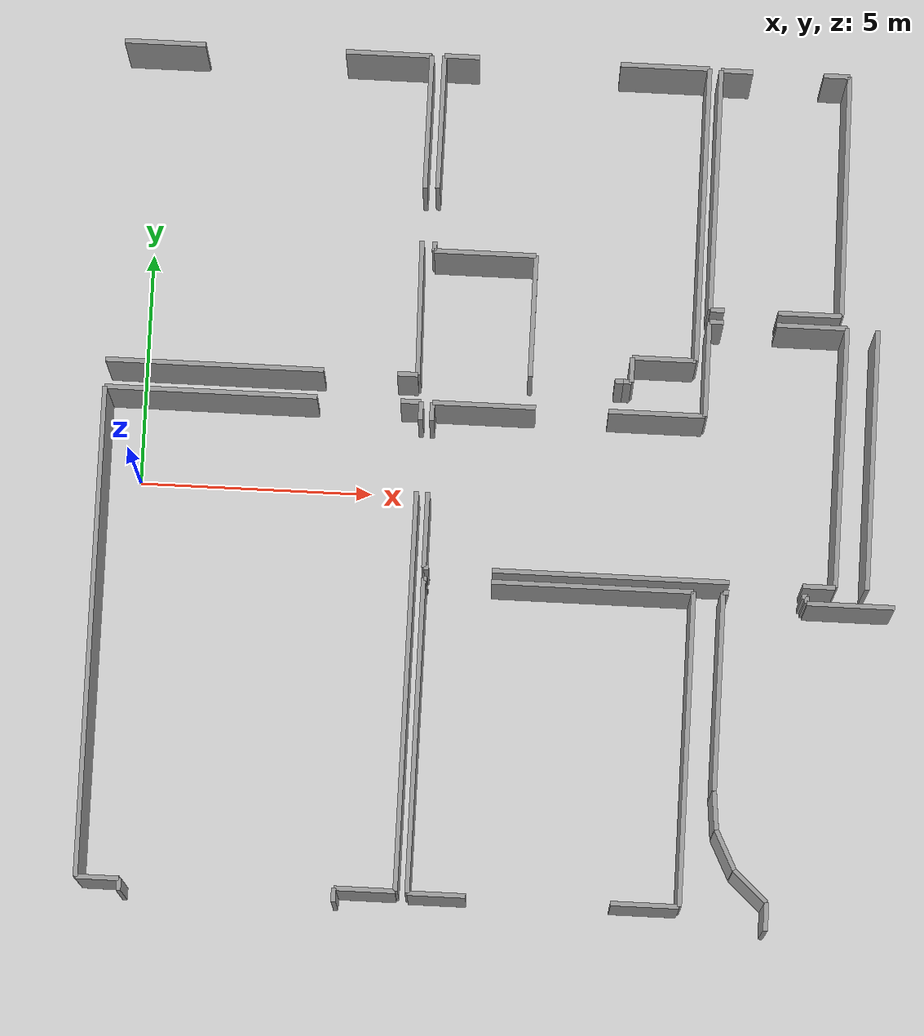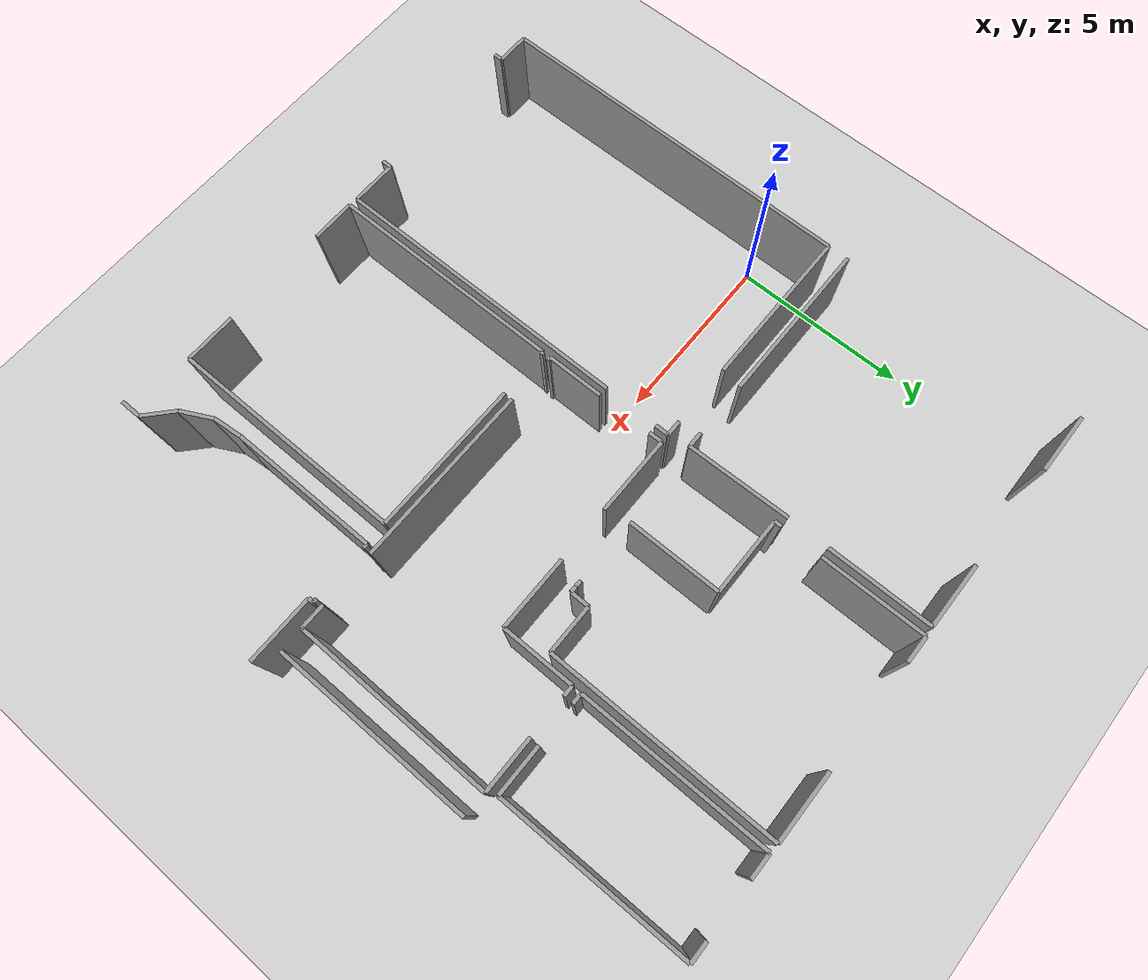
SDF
<sdf version="1.6">
 <world name="default">
  <model name="ground_plane">
   <static>1</static>
   <link name="link">
    <collision name="collision">
     <geometry><plane><normal>0 0 1</normal><size>100 100</size></plane></geometry>
     <surface><friction><ode><mu>100</mu><mu2>50</mu2></ode></friction></surface>
    </collision>
    <visual name="visual">
     <cast_shadows>0</cast_shadows>
     <geometry><plane><normal>0 0 1</normal><size>100 100</size></plane></geometry>
     <material>
      <script><uri>file://media/materials/scripts/gazebo.material</uri><name>Gazebo/Grey</name></script>
     </material>
    </visual>
   </link>
  </model>
  <model name="0510034870_A-40">
   <static>1</static>
   <link name="Wall_117">
    <collision name="Wall_117_Collision">
     <geometry><box><size>0.439725044906 0.1 2.5</size></box></geometry>
     <pose>0.219862522453 0 1.25 0 0 0</pose>
    </collision>
    <visual name="Wall_117_Visual">
     <pose>0.219862522453 0 1.25 0 0 0</pose>
     <geometry><box><size>0.439725044906 0.1 2.5</size></box></geometry>
     <material>
      <script><uri>file://media/materials/scripts/gazebo.material</uri><name>Gazebo/Grey</name></script>
      <ambient>1 1 1 1</ambient>
     </material>
    </visual>
    <pose>39.5055632073 -6.96425964596 0 0 0 3.14159265359</pose>
   </link>
   <link name="Wall_118">
    <collision name="Wall_118_Collision">
     <geometry><box><size>4.65595704303 0.1 2.5</size></box></geometry>
     <pose>2.32797852151 0 1.25 0 0 0</pose>
    </collision>
    <visual name="Wall_118_Visual">
     <pose>2.32797852151 0 1.25 0 0 0</pose>
     <geometry><box><size>4.65595704303 0.1 2.5</size></box></geometry>
     <material>
      <script><uri>file://media/materials/scripts/gazebo.material</uri><name>Gazebo/Grey</name></script>
      <ambient>1 1 1 1</ambient>
     </material>
    </visual>
    <pose>37.4970962152 -6.96425964596 0 0 0 3.14159265359</pose>
   </link>
   <link name="Wall_120">
    <collision name="Wall_120_Collision">
     <geometry><box><size>1.74252473771 0.1 2.5</size></box></geometry>
     <pose>0.871262368854 0 1.25 0 0 0</pose>
    </collision>
    <visual name="Wall_120_Visual">
     <pose>0.871262368854 0 1.25 0 0 0</pose>
     <geometry><box><size>1.74252473771 0.1 2.5</size></box></geometry>
     <material>
      <script><uri>file://media/materials/scripts/gazebo.material</uri><name>Gazebo/Grey</name></script>
      <ambient>1 1 1 1</ambient>
     </material>
    </visual>
    <pose>32.8411391722 -0.0210722740919 0 0 0 0.0</pose>
   </link>
   <link name="Wall_121">
    <collision name="Wall_121_Collision">
     <geometry><box><size>1.84940940509 0.1 2.5</size></box></geometry>
     <pose>0.924704702545 0 1.25 0 0 0</pose>
    </collision>
    <visual name="Wall_121_Visual">
     <pose>0.924704702545 0 1.25 0 0 0</pose>
     <geometry><box><size>1.84940940509 0.1 2.5</size></box></geometry>
     <material>
      <script><uri>file://media/materials/scripts/gazebo.material</uri><name>Gazebo/Grey</name></script>
      <ambient>1 1 1 1</ambient>
     </material>
    </visual>
    <pose>37.5964913394 -0.0210722740919 0 0 0 0.0</pose>
   </link>
   <link name="Wall_122">
    <collision name="Wall_122_Collision">
     <geometry><box><size>2.89654909776 0.1 2.5</size></box></geometry>
     <pose>1.44827454888 0 1.25 0 0 0</pose>
    </collision>
    <visual name="Wall_122_Visual">
     <pose>1.44827454888 0 1.25 0 0 0</pose>
     <geometry><box><size>2.89654909776 0.1 2.5</size></box></geometry>
     <material>
      <script><uri>file://media/materials/scripts/gazebo.material</uri><name>Gazebo/Grey</name></script>
      <ambient>1 1 1 1</ambient>
     </material>
    </visual>
    <pose>39.4459007445 -0.0210722740919 0 0 0 -1.57079632679</pose>
   </link>
   <link name="Wall_123">
    <collision name="Wall_123_Collision">
     <geometry><box><size>2.89386371361 0.1 2.5</size></box></geometry>
     <pose>1.44693185681 0 1.25 0 0 0</pose>
    </collision>
    <visual name="Wall_123_Visual">
     <pose>1.44693185681 0 1.25 0 0 0</pose>
     <geometry><box><size>2.89386371361 0.1 2.5</size></box></geometry>
     <material>
      <script><uri>file://media/materials/scripts/gazebo.material</uri><name>Gazebo/Grey</name></script>
      <ambient>1 1 1 1</ambient>
     </material>
    </visual>
    <pose>39.4459007445 -4.07101102486 0 0 0 -1.5501779784</pose>
   </link>
   <link name="Wall_124">
    <collision name="Wall_124_Collision">
     <geometry><box><size>0.183049513497 0.1 2.5</size></box></geometry>
     <pose>0.0915247567485 0 1.25 0 0 0</pose>
    </collision>
    <visual name="Wall_124_Visual">
     <pose>0.0915247567485 0 1.25 0 0 0</pose>
     <geometry><box><size>0.183049513497 0.1 2.5</size></box></geometry>
     <material>
      <script><uri>file://media/materials/scripts/gazebo.material</uri><name>Gazebo/Grey</name></script>
      <ambient>1 1 1 1</ambient>
     </material>
    </visual>
    <pose>43.8901195153 -6.88809479985 0 0 0 3.14159265359</pose>
   </link>
   <link name="Wall_125">
    <collision name="Wall_125_Collision">
     <geometry><box><size>2.62235565175 0.1 2.5</size></box></geometry>
     <pose>1.31117782587 0 1.25 0 0 0</pose>
    </collision>
    <visual name="Wall_125_Visual">
     <pose>1.31117782587 0 1.25 0 0 0</pose>
     <geometry><box><size>2.62235565175 0.1 2.5</size></box></geometry>
     <material>
      <script><uri>file://media/materials/scripts/gazebo.material</uri><name>Gazebo/Grey</name></script>
      <ambient>1 1 1 1</ambient>
     </material>
    </visual>
    <pose>41.8977740824 -6.88809479985 0 0 0 1.57079632679</pose>
   </link>
   <link name="Wall_126">
    <collision name="Wall_126_Collision">
     <geometry><box><size>2.17933013018 0.1 2.5</size></box></geometry>
     <pose>1.08966506509 0 1.25 0 0 0</pose>
    </collision>
    <visual name="Wall_126_Visual">
     <pose>1.08966506509 0 1.25 0 0 0</pose>
     <geometry><box><size>2.17933013018 0.1 2.5</size></box></geometry>
     <material>
      <script><uri>file://media/materials/scripts/gazebo.material</uri><name>Gazebo/Grey</name></script>
      <ambient>1 1 1 1</ambient>
     </material>
    </visual>
    <pose>41.8977740824 -4.2657391481 0 0 0 3.14159265359</pose>
   </link>
   <link name="Wall_127">
    <collision name="Wall_127_Collision">
     <geometry><box><size>0.198790248361 0.1 2.5</size></box></geometry>
     <pose>0.0993951241804 0 1.25 0 0 0</pose>
    </collision>
    <visual name="Wall_127_Visual">
     <pose>0.0993951241804 0 1.25 0 0 0</pose>
     <geometry><box><size>0.198790248361 0.1 2.5</size></box></geometry>
     <material>
      <script><uri>file://media/materials/scripts/gazebo.material</uri><name>Gazebo/Grey</name></script>
      <ambient>1 1 1 1</ambient>
     </material>
    </visual>
    <pose>39.7184439522 -4.2657391481 0 0 0 1.57079632679</pose>
   </link>
   <link name="Wall_128">
    <collision name="Wall_128_Collision">
     <geometry><box><size>2.89870710174 0.1 2.5</size></box></geometry>
     <pose>1.44935355087 0 1.25 0 0 0</pose>
    </collision>
    <visual name="Wall_128_Visual">
     <pose>1.44935355087 0 1.25 0 0 0</pose>
     <geometry><box><size>2.89870710174 0.1 2.5</size></box></geometry>
     <material>
      <script><uri>file://media/materials/scripts/gazebo.material</uri><name>Gazebo/Grey</name></script>
      <ambient>1 1 1 1</ambient>
     </material>
    </visual>
    <pose>39.7184439522 -2.90264228545 0 0 0 1.57079632679</pose>
   </link>
   <link name="Wall_129">
    <collision name="Wall_129_Collision">
     <geometry><box><size>0.758728808718 0.1 2.5</size></box></geometry>
     <pose>0.379364404359 0 1.25 0 0 0</pose>
    </collision>
    <visual name="Wall_129_Visual">
     <pose>0.379364404359 0 1.25 0 0 0</pose>
     <geometry><box><size>0.758728808718 0.1 2.5</size></box></geometry>
     <material>
      <script><uri>file://media/materials/scripts/gazebo.material</uri><name>Gazebo/Grey</name></script>
      <ambient>1 1 1 1</ambient>
     </material>
    </visual>
    <pose>39.7184439522 -0.00393518371595 0 0 0 0.0</pose>
   </link>
   <link name="Wall_130">
    <collision name="Wall_130_Collision">
     <geometry><box><size>1.91237234454 0.1 2.5</size></box></geometry>
     <pose>0.956186172272 0 1.25 0 0 0</pose>
    </collision>
    <visual name="Wall_130_Visual">
     <pose>0.956186172272 0 1.25 0 0 0</pose>
     <geometry><box><size>1.91237234454 0.1 2.5</size></box></geometry>
     <material>
      <script><uri>file://media/materials/scripts/gazebo.material</uri><name>Gazebo/Grey</name></script>
      <ambient>1 1 1 1</ambient>
     </material>
    </visual>
    <pose>43.5051062182 -0.00393518371595 0 0 0 0.0</pose>
   </link>
   <link name="Wall_131">
    <collision name="Wall_131_Collision">
     <geometry><box><size>6.36052629909 0.1 2.5</size></box></geometry>
     <pose>3.18026314954 0 1.25 0 0 0</pose>
    </collision>
    <visual name="Wall_131_Visual">
     <pose>3.18026314954 0 1.25 0 0 0</pose>
     <geometry><box><size>6.36052629909 0.1 2.5</size></box></geometry>
     <material>
      <script><uri>file://media/materials/scripts/gazebo.material</uri><name>Gazebo/Grey</name></script>
      <ambient>1 1 1 1</ambient>
     </material>
    </visual>
    <pose>45.4174785628 -0.00393518371595 0 0 0 -1.57079632679</pose>
   </link>
   <link name="Wall_132">
    <collision name="Wall_132_Collision">
     <geometry><box><size>1.35611508508 0.1 2.5</size></box></geometry>
     <pose>0.678057542541 0 1.25 0 0 0</pose>
    </collision>
    <visual name="Wall_132_Visual">
     <pose>0.678057542541 0 1.25 0 0 0</pose>
     <geometry><box><size>1.35611508508 0.1 2.5</size></box></geometry>
     <material>
      <script><uri>file://media/materials/scripts/gazebo.material</uri><name>Gazebo/Grey</name></script>
      <ambient>1 1 1 1</ambient>
     </material>
    </visual>
    <pose>45.4174785628 -6.3644614828 0 0 0 3.14159265359</pose>
   </link>
   <link name="Wall_133">
    <collision name="Wall_133_Collision">
     <geometry><box><size>0.527441559348 0.1 2.5</size></box></geometry>
     <pose>0.263720779674 0 1.25 0 0 0</pose>
    </collision>
    <visual name="Wall_133_Visual">
     <pose>0.263720779674 0 1.25 0 0 0</pose>
     <geometry><box><size>0.527441559348 0.1 2.5</size></box></geometry>
     <material>
      <script><uri>file://media/materials/scripts/gazebo.material</uri><name>Gazebo/Grey</name></script>
      <ambient>1 1 1 1</ambient>
     </material>
    </visual>
    <pose>44.0613634777 -6.3644614828 0 0 0 -1.57079632679</pose>
   </link>
   <link name="Wall_134">
    <collision name="Wall_134_Collision">
     <geometry><box><size>0.171286302285 0.1 2.5</size></box></geometry>
     <pose>0.0856431511426 0 1.25 0 0 0</pose>
    </collision>
    <visual name="Wall_134_Visual">
     <pose>0.0856431511426 0 1.25 0 0 0</pose>
     <geometry><box><size>0.171286302285 0.1 2.5</size></box></geometry>
     <material>
      <script><uri>file://media/materials/scripts/gazebo.material</uri><name>Gazebo/Grey</name></script>
      <ambient>1 1 1 1</ambient>
     </material>
    </visual>
    <pose>44.0613634777 -6.89190304215 0 0 0 3.11935762329</pose>
   </link>
   <link name="Wall_135">
    <collision name="Wall_135_Collision">
     <geometry><box><size>1.2927713214 0.1 2.5</size></box></geometry>
     <pose>0.646385660698 0 1.25 0 0 0</pose>
    </collision>
    <visual name="Wall_135_Visual">
     <pose>0.646385660698 0 1.25 0 0 0</pose>
     <geometry><box><size>1.2927713214 0.1 2.5</size></box></geometry>
     <material>
      <script><uri>file://media/materials/scripts/gazebo.material</uri><name>Gazebo/Grey</name></script>
      <ambient>1 1 1 1</ambient>
     </material>
    </visual>
    <pose>39.6038158588 -17.9916599494 0 0 0 3.14159265359</pose>
   </link>
   <link name="Wall_136">
    <collision name="Wall_136_Collision">
     <geometry><box><size>0.281809930627 0.1 2.5</size></box></geometry>
     <pose>0.140904965313 0 1.25 0 0 0</pose>
    </collision>
    <visual name="Wall_136_Visual">
     <pose>0.140904965313 0 1.25 0 0 0</pose>
     <geometry><box><size>0.281809930627 0.1 2.5</size></box></geometry>
     <material>
      <script><uri>file://media/materials/scripts/gazebo.material</uri><name>Gazebo/Grey</name></script>
      <ambient>1 1 1 1</ambient>
     </material>
    </visual>
    <pose>38.3110445374 -17.9916599494 0 0 0 -1.57079632679</pose>
   </link>
   <link name="Wall_137">
    <collision name="Wall_137_Collision">
     <geometry><box><size>0.257310238459 0.1 2.5</size></box></geometry>
     <pose>0.12865511923 0 1.25 0 0 0</pose>
    </collision>
    <visual name="Wall_137_Visual">
     <pose>0.12865511923 0 1.25 0 0 0</pose>
     <geometry><box><size>0.257310238459 0.1 2.5</size></box></geometry>
     <material>
      <script><uri>file://media/materials/scripts/gazebo.material</uri><name>Gazebo/Grey</name></script>
      <ambient>1 1 1 1</ambient>
     </material>
    </visual>
    <pose>33.7822827874 -18.27346988 0 0 0 1.57079632679</pose>
   </link>
   <link name="Wall_138">
    <collision name="Wall_138_Collision">
     <geometry><box><size>0.921975462225 0.1 2.5</size></box></geometry>
     <pose>0.460987731113 0 1.25 0 0 0</pose>
    </collision>
    <visual name="Wall_138_Visual">
     <pose>0.460987731113 0 1.25 0 0 0</pose>
     <geometry><box><size>0.921975462225 0.1 2.5</size></box></geometry>
     <material>
      <script><uri>file://media/materials/scripts/gazebo.material</uri><name>Gazebo/Grey</name></script>
      <ambient>1 1 1 1</ambient>
     </material>
    </visual>
    <pose>33.7822827874 -18.0161596415 0 0 0 3.14159265359</pose>
   </link>
   <link name="Wall_139">
    <collision name="Wall_139_Collision">
     <geometry><box><size>10.4654306805 0.1 2.5</size></box></geometry>
     <pose>5.23271534023 0 1.25 0 0 0</pose>
    </collision>
    <visual name="Wall_139_Visual">
     <pose>5.23271534023 0 1.25 0 0 0</pose>
     <geometry><box><size>10.4654306805 0.1 2.5</size></box></geometry>
     <material>
      <script><uri>file://media/materials/scripts/gazebo.material</uri><name>Gazebo/Grey</name></script>
      <ambient>1 1 1 1</ambient>
     </material>
    </visual>
    <pose>32.8603073252 -18.0161596415 0 0 0 1.57079632679</pose>
   </link>
   <link name="Wall_140">
    <collision name="Wall_140_Collision">
     <geometry><box><size>4.52926951566 0.1 2.5</size></box></geometry>
     <pose>2.26463475783 0 1.25 0 0 0</pose>
    </collision>
    <visual name="Wall_140_Visual">
     <pose>2.26463475783 0 1.25 0 0 0</pose>
     <geometry><box><size>4.52926951566 0.1 2.5</size></box></geometry>
     <material>
      <script><uri>file://media/materials/scripts/gazebo.material</uri><name>Gazebo/Grey</name></script>
      <ambient>1 1 1 1</ambient>
     </material>
    </visual>
    <pose>32.8603073252 -7.55072896105 0 0 0 0.0</pose>
   </link>
   <link name="Wall_141">
    <collision name="Wall_141_Collision">
     <geometry><box><size>0.44239081452 0.1 2.5</size></box></geometry>
     <pose>0.22119540726 0 1.25 0 0 0</pose>
    </collision>
    <visual name="Wall_141_Visual">
     <pose>0.22119540726 0 1.25 0 0 0</pose>
     <geometry><box><size>0.44239081452 0.1 2.5</size></box></geometry>
     <material>
      <script><uri>file://media/materials/scripts/gazebo.material</uri><name>Gazebo/Grey</name></script>
      <ambient>1 1 1 1</ambient>
     </material>
    </visual>
    <pose>39.165994935 -7.55072896105 0 0 0 0.0</pose>
   </link>
   <link name="Wall_142">
    <collision name="Wall_142_Collision">
     <geometry><box><size>0.382855293139 0.1 2.5</size></box></geometry>
     <pose>0.19142764657 0 1.25 0 0 0</pose>
    </collision>
    <visual name="Wall_142_Visual">
     <pose>0.19142764657 0 1.25 0 0 0</pose>
     <geometry><box><size>0.382855293139 0.1 2.5</size></box></geometry>
     <material>
      <script><uri>file://media/materials/scripts/gazebo.material</uri><name>Gazebo/Grey</name></script>
      <ambient>1 1 1 1</ambient>
     </material>
    </visual>
    <pose>39.6083857496 -7.55072896105 0 0 0 -1.57079632679</pose>
   </link>
   <link name="Wall_143">
    <collision name="Wall_143_Collision">
     <geometry><box><size>8.51396160804 0.1 2.5</size></box></geometry>
     <pose>4.25698080402 0 1.25 0 0 0</pose>
    </collision>
    <visual name="Wall_143_Visual">
     <pose>4.25698080402 0 1.25 0 0 0</pose>
     <geometry><box><size>8.51396160804 0.1 2.5</size></box></geometry>
     <material>
      <script><uri>file://media/materials/scripts/gazebo.material</uri><name>Gazebo/Grey</name></script>
      <ambient>1 1 1 1</ambient>
     </material>
    </visual>
    <pose>39.6083857496 -9.47769956776 0 0 0 -1.57133307939</pose>
   </link>
   <link name="Wall_144">
    <collision name="Wall_144_Collision">
     <geometry><box><size>1.44370465812 0.1 2.5</size></box></geometry>
     <pose>0.721852329058 0 1.25 0 0 0</pose>
    </collision>
    <visual name="Wall_144_Visual">
     <pose>0.721852329058 0 1.25 0 0 0</pose>
     <geometry><box><size>1.44370465812 0.1 2.5</size></box></geometry>
     <material>
      <script><uri>file://media/materials/scripts/gazebo.material</uri><name>Gazebo/Grey</name></script>
      <ambient>1 1 1 1</ambient>
     </material>
    </visual>
    <pose>45.5929115917 -18.0162865829 0 0 0 3.14159265359</pose>
   </link>
   <link name="Wall_145">
    <collision name="Wall_145_Collision">
     <geometry><box><size>1.23577462822 0.1 2.5</size></box></geometry>
     <pose>0.61788731411 0 1.25 0 0 0</pose>
    </collision>
    <visual name="Wall_145_Visual">
     <pose>0.61788731411 0 1.25 0 0 0</pose>
     <geometry><box><size>1.23577462822 0.1 2.5</size></box></geometry>
     <material>
      <script><uri>file://media/materials/scripts/gazebo.material</uri><name>Gazebo/Grey</name></script>
      <ambient>1 1 1 1</ambient>
     </material>
    </visual>
    <pose>41.0923308347 -18.0162865829 0 0 0 3.14159265359</pose>
   </link>
   <link name="Wall_146">
    <collision name="Wall_146_Collision">
     <geometry><box><size>6.68676572328 0.1 2.5</size></box></geometry>
     <pose>3.34338286164 0 1.25 0 0 0</pose>
    </collision>
    <visual name="Wall_146_Visual">
     <pose>3.34338286164 0 1.25 0 0 0</pose>
     <geometry><box><size>6.68676572328 0.1 2.5</size></box></geometry>
     <material>
      <script><uri>file://media/materials/scripts/gazebo.material</uri><name>Gazebo/Grey</name></script>
      <ambient>1 1 1 1</ambient>
     </material>
    </visual>
    <pose>39.8565562065 -18.0162865829 0 0 0 1.57079632679</pose>
   </link>
   <link name="Wall_147">
    <collision name="Wall_147_Collision">
     <geometry><box><size>0.0729913108605 0.1 2.5</size></box></geometry>
     <pose>0.0364956554302 0 1.25 0 0 0</pose>
    </collision>
    <visual name="Wall_147_Visual">
     <pose>0.0364956554302 0 1.25 0 0 0</pose>
     <geometry><box><size>0.0729913108605 0.1 2.5</size></box></geometry>
     <material>
      <script><uri>file://media/materials/scripts/gazebo.material</uri><name>Gazebo/Grey</name></script>
      <ambient>1 1 1 1</ambient>
     </material>
    </visual>
    <pose>39.8565562065 -11.3295208596 0 0 0 0.0</pose>
   </link>
   <link name="Wall_148">
    <collision name="Wall_148_Collision">
     <geometry><box><size>4.29620508654 0.1 2.5</size></box></geometry>
     <pose>2.14810254327 0 1.25 0 0 0</pose>
    </collision>
    <visual name="Wall_148_Visual">
     <pose>2.14810254327 0 1.25 0 0 0</pose>
     <geometry><box><size>4.29620508654 0.1 2.5</size></box></geometry>
     <material>
      <script><uri>file://media/materials/scripts/gazebo.material</uri><name>Gazebo/Grey</name></script>
      <ambient>1 1 1 1</ambient>
     </material>
    </visual>
    <pose>41.2944215597 -11.3295208596 0 0 0 0.0</pose>
   </link>
   <link name="Wall_149">
    <collision name="Wall_149_Collision">
     <geometry><box><size>6.68676611368 0.1 2.5</size></box></geometry>
     <pose>3.34338305684 0 1.25 0 0 0</pose>
    </collision>
    <visual name="Wall_149_Visual">
     <pose>3.34338305684 0 1.25 0 0 0</pose>
     <geometry><box><size>6.68676611368 0.1 2.5</size></box></geometry>
     <material>
      <script><uri>file://media/materials/scripts/gazebo.material</uri><name>Gazebo/Grey</name></script>
      <ambient>1 1 1 1</ambient>
     </material>
    </visual>
    <pose>45.5906266463 -11.3295208596 0 0 0 -1.57045461521</pose>
   </link>
   <link name="Wall_150">
    <collision name="Wall_150_Collision">
     <geometry><box><size>1.35217990137 0.1 2.5</size></box></geometry>
     <pose>0.676089950683 0 1.25 0 0 0</pose>
    </collision>
    <visual name="Wall_150_Visual">
     <pose>0.676089950683 0 1.25 0 0 0</pose>
     <geometry><box><size>1.35217990137 0.1 2.5</size></box></geometry>
     <material>
      <script><uri>file://media/materials/scripts/gazebo.material</uri><name>Gazebo/Grey</name></script>
      <ambient>1 1 1 1</ambient>
     </material>
    </visual>
    <pose>48.4724505405 -5.2459807176 0 0 0 3.14159265359</pose>
   </link>
   <link name="Wall_151">
    <collision name="Wall_151_Collision">
     <geometry><box><size>0.296789017029 0.1 2.5</size></box></geometry>
     <pose>0.148394508515 0 1.25 0 0 0</pose>
    </collision>
    <visual name="Wall_151_Visual">
     <pose>0.148394508515 0 1.25 0 0 0</pose>
     <geometry><box><size>0.296789017029 0.1 2.5</size></box></geometry>
     <material>
      <script><uri>file://media/materials/scripts/gazebo.material</uri><name>Gazebo/Grey</name></script>
      <ambient>1 1 1 1</ambient>
     </material>
    </visual>
    <pose>45.9668809861 -5.2459807176 0 0 0 3.14159265359</pose>
   </link>
   <link name="Wall_152">
    <collision name="Wall_152_Collision">
     <geometry><box><size>5.21818054877 0.1 2.5</size></box></geometry>
     <pose>2.60909027438 0 1.25 0 0 0</pose>
    </collision>
    <visual name="Wall_152_Visual">
     <pose>2.60909027438 0 1.25 0 0 0</pose>
     <geometry><box><size>5.21818054877 0.1 2.5</size></box></geometry>
     <material>
      <script><uri>file://media/materials/scripts/gazebo.material</uri><name>Gazebo/Grey</name></script>
      <ambient>1 1 1 1</ambient>
     </material>
    </visual>
    <pose>45.6700919691 -5.2459807176 0 0 0 1.57079632679</pose>
   </link>
   <link name="Wall_153">
    <collision name="Wall_153_Collision">
     <geometry><box><size>0.681421489911 0.1 2.5</size></box></geometry>
     <pose>0.340710744956 0 1.25 0 0 0</pose>
    </collision>
    <visual name="Wall_153_Visual">
     <pose>0.340710744956 0 1.25 0 0 0</pose>
     <geometry><box><size>0.681421489911 0.1 2.5</size></box></geometry>
     <material>
      <script><uri>file://media/materials/scripts/gazebo.material</uri><name>Gazebo/Grey</name></script>
      <ambient>1 1 1 1</ambient>
     </material>
    </visual>
    <pose>45.6700919691 -0.0278001688321 0 0 0 0.0</pose>
   </link>
   <link name="Wall_154">
    <collision name="Wall_154_Collision">
     <geometry><box><size>0.555368669591 0.1 2.5</size></box></geometry>
     <pose>0.277684334795 0 1.25 0 0 0</pose>
    </collision>
    <visual name="Wall_154_Visual">
     <pose>0.277684334795 0 1.25 0 0 0</pose>
     <geometry><box><size>0.555368669591 0.1 2.5</size></box></geometry>
     <material>
      <script><uri>file://media/materials/scripts/gazebo.material</uri><name>Gazebo/Grey</name></script>
      <ambient>1 1 1 1</ambient>
     </material>
    </visual>
    <pose>47.8725254359 -0.0278001688321 0 0 0 0.0</pose>
   </link>
   <link name="Wall_155">
    <collision name="Wall_155_Collision">
     <geometry><box><size>5.21837077213 0.1 2.5</size></box></geometry>
     <pose>2.60918538607 0 1.25 0 0 0</pose>
    </collision>
    <visual name="Wall_155_Visual">
     <pose>2.60918538607 0 1.25 0 0 0</pose>
     <geometry><box><size>5.21837077213 0.1 2.5</size></box></geometry>
     <material>
      <script><uri>file://media/materials/scripts/gazebo.material</uri><name>Gazebo/Grey</name></script>
      <ambient>1 1 1 1</ambient>
     </material>
    </visual>
    <pose>48.4278941055 -0.0278001688321 0 0 0 -1.5622578426</pose>
   </link>
   <link name="Wall_156">
    <collision name="Wall_156_Collision">
     <geometry><box><size>0.691449861317 0.1 2.5</size></box></geometry>
     <pose>0.345724930658 0 1.25 0 0 0</pose>
    </collision>
    <visual name="Wall_156_Visual">
     <pose>0.345724930658 0 1.25 0 0 0</pose>
     <geometry><box><size>0.691449861317 0.1 2.5</size></box></geometry>
     <material>
      <script><uri>file://media/materials/scripts/gazebo.material</uri><name>Gazebo/Grey</name></script>
      <ambient>1 1 1 1</ambient>
     </material>
    </visual>
    <pose>48.5892366378 -11.0885860631 0 0 0 3.14159265359</pose>
   </link>
   <link name="Wall_157">
    <collision name="Wall_157_Collision">
     <geometry><box><size>5.03779680488 0.1 2.5</size></box></geometry>
     <pose>2.51889840244 0 1.25 0 0 0</pose>
    </collision>
    <visual name="Wall_157_Visual">
     <pose>2.51889840244 0 1.25 0 0 0</pose>
     <geometry><box><size>5.03779680488 0.1 2.5</size></box></geometry>
     <material>
      <script><uri>file://media/materials/scripts/gazebo.material</uri><name>Gazebo/Grey</name></script>
      <ambient>1 1 1 1</ambient>
     </material>
    </visual>
    <pose>46.3404695563 -11.0885860631 0 0 0 3.14159265359</pose>
   </link>
   <link name="Wall_158">
    <collision name="Wall_158_Collision">
     <geometry><box><size>0.100283714052 0.1 2.5</size></box></geometry>
     <pose>0.0501418570259 0 1.25 0 0 0</pose>
    </collision>
    <visual name="Wall_158_Visual">
     <pose>0.0501418570259 0 1.25 0 0 0</pose>
     <geometry><box><size>0.100283714052 0.1 2.5</size></box></geometry>
     <material>
      <script><uri>file://media/materials/scripts/gazebo.material</uri><name>Gazebo/Grey</name></script>
      <ambient>1 1 1 1</ambient>
     </material>
    </visual>
    <pose>39.9506197914 -11.0885860631 0 0 0 3.14159265359</pose>
   </link>
   <link name="Wall_159">
    <collision name="Wall_159_Collision">
     <geometry><box><size>1.60250836227 0.1 2.5</size></box></geometry>
     <pose>0.801254181133 0 1.25 0 0 0</pose>
    </collision>
    <visual name="Wall_159_Visual">
     <pose>0.801254181133 0 1.25 0 0 0</pose>
     <geometry><box><size>1.60250836227 0.1 2.5</size></box></geometry>
     <material>
      <script><uri>file://media/materials/scripts/gazebo.material</uri><name>Gazebo/Grey</name></script>
      <ambient>1 1 1 1</ambient>
     </material>
    </visual>
    <pose>39.8503360774 -11.0885860631 0 0 0 1.57079632679</pose>
   </link>
   <link name="Wall_160">
    <collision name="Wall_160_Collision">
     <geometry><box><size>0.383870824421 0.1 2.5</size></box></geometry>
     <pose>0.19193541221 0 1.25 0 0 0</pose>
    </collision>
    <visual name="Wall_160_Visual">
     <pose>0.19193541221 0 1.25 0 0 0</pose>
     <geometry><box><size>0.383870824421 0.1 2.5</size></box></geometry>
     <material>
      <script><uri>file://media/materials/scripts/gazebo.material</uri><name>Gazebo/Grey</name></script>
      <ambient>1 1 1 1</ambient>
     </material>
    </visual>
    <pose>39.8503360774 -7.93231484009 0 0 0 1.57079632679</pose>
   </link>
   <link name="Wall_161">
    <collision name="Wall_161_Collision">
     <geometry><box><size>2.20103711132 0.1 2.5</size></box></geometry>
     <pose>1.10051855566 0 1.25 0 0 0</pose>
    </collision>
    <visual name="Wall_161_Visual">
     <pose>1.10051855566 0 1.25 0 0 0</pose>
     <geometry><box><size>2.20103711132 0.1 2.5</size></box></geometry>
     <material>
      <script><uri>file://media/materials/scripts/gazebo.material</uri><name>Gazebo/Grey</name></script>
      <ambient>1 1 1 1</ambient>
     </material>
    </visual>
    <pose>39.8503360774 -7.54844401566 0 0 0 0.0</pose>
   </link>
   <link name="Wall_162">
    <collision name="Wall_162_Collision">
     <geometry><box><size>2.05683166934 0.1 2.5</size></box></geometry>
     <pose>1.02841583467 0 1.25 0 0 0</pose>
    </collision>
    <visual name="Wall_162_Visual">
     <pose>1.02841583467 0 1.25 0 0 0</pose>
     <geometry><box><size>2.05683166934 0.1 2.5</size></box></geometry>
     <material>
      <script><uri>file://media/materials/scripts/gazebo.material</uri><name>Gazebo/Grey</name></script>
      <ambient>1 1 1 1</ambient>
     </material>
    </visual>
    <pose>43.6064054636 -7.54844401566 0 0 0 0.0</pose>
   </link>
   <link name="Wall_163">
    <collision name="Wall_163_Collision">
     <geometry><box><size>2.0438836455 0.1 2.5</size></box></geometry>
     <pose>1.02194182275 0 1.25 0 0 0</pose>
    </collision>
    <visual name="Wall_163_Visual">
     <pose>1.02194182275 0 1.25 0 0 0</pose>
     <geometry><box><size>2.0438836455 0.1 2.5</size></box></geometry>
     <material>
      <script><uri>file://media/materials/scripts/gazebo.material</uri><name>Gazebo/Grey</name></script>
      <ambient>1 1 1 1</ambient>
     </material>
    </visual>
    <pose>45.6632371329 -7.54844401566 0 0 0 1.57079632679</pose>
   </link>
   <link name="Wall_164">
    <collision name="Wall_164_Collision">
     <geometry><box><size>0.301739732027 0.1 2.5</size></box></geometry>
     <pose>0.150869866013 0 1.25 0 0 0</pose>
    </collision>
    <visual name="Wall_164_Visual">
     <pose>0.150869866013 0 1.25 0 0 0</pose>
     <geometry><box><size>0.301739732027 0.1 2.5</size></box></geometry>
     <material>
      <script><uri>file://media/materials/scripts/gazebo.material</uri><name>Gazebo/Grey</name></script>
      <ambient>1 1 1 1</ambient>
     </material>
    </visual>
    <pose>45.6632371329 -5.50456037016 0 0 0 0.0</pose>
   </link>
   <link name="Wall_165">
    <collision name="Wall_165_Collision">
     <geometry><box><size>1.5020977068 0.1 2.5</size></box></geometry>
     <pose>0.751048853402 0 1.25 0 0 0</pose>
    </collision>
    <visual name="Wall_165_Visual">
     <pose>0.751048853402 0 1.25 0 0 0</pose>
     <geometry><box><size>1.5020977068 0.1 2.5</size></box></geometry>
     <material>
      <script><uri>file://media/materials/scripts/gazebo.material</uri><name>Gazebo/Grey</name></script>
      <ambient>1 1 1 1</ambient>
     </material>
    </visual>
    <pose>47.1024988417 -5.50456037016 0 0 0 0.0</pose>
   </link>
   <link name="Wall_166">
    <collision name="Wall_166_Collision">
     <geometry><box><size>5.58404681806 0.1 2.5</size></box></geometry>
     <pose>2.79202340903 0 1.25 0 0 0</pose>
    </collision>
    <visual name="Wall_166_Visual">
     <pose>2.79202340903 0 1.25 0 0 0</pose>
     <geometry><box><size>5.58404681806 0.1 2.5</size></box></geometry>
     <material>
      <script><uri>file://media/materials/scripts/gazebo.material</uri><name>Gazebo/Grey</name></script>
      <ambient>1 1 1 1</ambient>
     </material>
    </visual>
    <pose>48.6045965485 -5.50456037016 0 0 0 -1.57354700753</pose>
   </link>
   <link name="Wall_167">
    <collision name="Wall_167_Collision">
     <geometry><box><size>0.595609096621 0.1 2.5</size></box></geometry>
     <pose>0.297804548311 0 1.25 0 0 0</pose>
    </collision>
    <visual name="Wall_167_Visual">
     <pose>0.297804548311 0 1.25 0 0 0</pose>
     <geometry><box><size>0.595609096621 0.1 2.5</size></box></geometry>
     <material>
      <script><uri>file://media/materials/scripts/gazebo.material</uri><name>Gazebo/Grey</name></script>
      <ambient>1 1 1 1</ambient>
     </material>
    </visual>
    <pose>47.4244222579 -18.4336699396 0 0 0 1.57079632679</pose>
   </link>
   <link name="Wall_168">
    <collision name="Wall_168_Collision">
     <geometry><box><size>0.960295323471 0.1 2.5</size></box></geometry>
     <pose>0.480147661735 0 1.25 0 0 0</pose>
    </collision>
    <visual name="Wall_168_Visual">
     <pose>0.480147661735 0 1.25 0 0 0</pose>
     <geometry><box><size>0.960295323471 0.1 2.5</size></box></geometry>
     <material>
      <script><uri>file://media/materials/scripts/gazebo.material</uri><name>Gazebo/Grey</name></script>
      <ambient>1 1 1 1</ambient>
     </material>
    </visual>
    <pose>47.4244222579 -17.838060843 0 0 0 2.3979888303</pose>
   </link>
   <link name="Wall_169">
    <collision name="Wall_169_Collision">
     <geometry><box><size>0.925808455426 0.1 2.5</size></box></geometry>
     <pose>0.462904227713 0 1.25 0 0 0</pose>
    </collision>
    <visual name="Wall_169_Visual">
     <pose>0.462904227713 0 1.25 0 0 0</pose>
     <geometry><box><size>0.925808455426 0.1 2.5</size></box></geometry>
     <material>
      <script><uri>file://media/materials/scripts/gazebo.material</uri><name>Gazebo/Grey</name></script>
      <ambient>1 1 1 1</ambient>
     </material>
    </visual>
    <pose>46.717612486 -17.1879938814 0 0 0 2.03757122509</pose>
   </link>
   <link name="Wall_170">
    <collision name="Wall_170_Collision">
     <geometry><box><size>0.824510452949 0.1 2.5</size></box></geometry>
     <pose>0.412255226475 0 1.25 0 0 0</pose>
    </collision>
    <visual name="Wall_170_Visual">
     <pose>0.412255226475 0 1.25 0 0 0</pose>
     <geometry><box><size>0.824510452949 0.1 2.5</size></box></geometry>
     <material>
      <script><uri>file://media/materials/scripts/gazebo.material</uri><name>Gazebo/Grey</name></script>
      <ambient>1 1 1 1</ambient>
     </material>
    </visual>
    <pose>46.3009907777 -16.3612244768 0 0 0 1.67041902059</pose>
   </link>
   <link name="Wall_171">
    <collision name="Wall_171_Collision">
     <geometry><box><size>4.23108414311 0.1 2.5</size></box></geometry>
     <pose>2.11554207156 0 1.25 0 0 0</pose>
    </collision>
    <visual name="Wall_171_Visual">
     <pose>2.11554207156 0 1.25 0 0 0</pose>
     <geometry><box><size>4.23108414311 0.1 2.5</size></box></geometry>
     <material>
      <script><uri>file://media/materials/scripts/gazebo.material</uri><name>Gazebo/Grey</name></script>
      <ambient>1 1 1 1</ambient>
     </material>
    </visual>
    <pose>46.2189866267 -15.5408021428 0 0 0 1.57079632679</pose>
   </link>
   <link name="Wall_172">
    <collision name="Wall_172_Collision">
     <geometry><box><size>0.119832691221 0.1 2.5</size></box></geometry>
     <pose>0.0599163456107 0 1.25 0 0 0</pose>
    </collision>
    <visual name="Wall_172_Visual">
     <pose>0.0599163456107 0 1.25 0 0 0</pose>
     <geometry><box><size>0.119832691221 0.1 2.5</size></box></geometry>
     <material>
      <script><uri>file://media/materials/scripts/gazebo.material</uri><name>Gazebo/Grey</name></script>
      <ambient>1 1 1 1</ambient>
     </material>
    </visual>
    <pose>46.2189866267 -11.3097179997 0 0 0 0.0</pose>
   </link>
   <link name="Wall_173">
    <collision name="Wall_173_Collision">
     <geometry><box><size>0.108915729945 0.1 2.5</size></box></geometry>
     <pose>0.0544578649724 0 1.25 0 0 0</pose>
    </collision>
    <visual name="Wall_173_Visual">
     <pose>0.0544578649724 0 1.25 0 0 0</pose>
     <geometry><box><size>0.108915729945 0.1 2.5</size></box></geometry>
     <material>
      <script><uri>file://media/materials/scripts/gazebo.material</uri><name>Gazebo/Grey</name></script>
      <ambient>1 1 1 1</ambient>
     </material>
    </visual>
    <pose>47.891439706 -11.3097179997 0 0 0 0.0</pose>
   </link>
   <link name="Wall_174">
    <collision name="Wall_174_Collision">
     <geometry><box><size>0.143189910697 0.1 2.5</size></box></geometry>
     <pose>0.0715949553484 0 1.25 0 0 0</pose>
    </collision>
    <visual name="Wall_174_Visual">
     <pose>0.0715949553484 0 1.25 0 0 0</pose>
     <geometry><box><size>0.143189910697 0.1 2.5</size></box></geometry>
     <material>
      <script><uri>file://media/materials/scripts/gazebo.material</uri><name>Gazebo/Grey</name></script>
      <ambient>1 1 1 1</ambient>
     </material>
    </visual>
    <pose>48.0003554359 -11.3097179997 0 0 0 -1.57079632679</pose>
   </link>
   <link name="Wall_175">
    <collision name="Wall_175_Collision">
     <geometry><box><size>1.86730814393 0.1 2.5</size></box></geometry>
     <pose>0.933654071963 0 1.25 0 0 0</pose>
    </collision>
    <visual name="Wall_175_Visual">
     <pose>0.933654071963 0 1.25 0 0 0</pose>
     <geometry><box><size>1.86730814393 0.1 2.5</size></box></geometry>
     <material>
      <script><uri>file://media/materials/scripts/gazebo.material</uri><name>Gazebo/Grey</name></script>
      <ambient>1 1 1 1</ambient>
     </material>
    </visual>
    <pose>48.0003554359 -11.4529079104 0 0 0 0.0</pose>
   </link>
   <link name="Wall_187">
    <collision name="Wall_187_Collision">
     <geometry><box><size>5.58262933743 0.1 2.5</size></box></geometry>
     <pose>2.79131466871 0 1.25 0 0 0</pose>
    </collision>
    <visual name="Wall_187_Visual">
     <pose>2.79131466871 0 1.25 0 0 0</pose>
     <geometry><box><size>5.58262933743 0.1 2.5</size></box></geometry>
     <material>
      <script><uri>file://media/materials/scripts/gazebo.material</uri><name>Gazebo/Grey</name></script>
      <ambient>1 1 1 1</ambient>
     </material>
    </visual>
    <pose>49.2631685845 -11.1011532627 0 0 0 1.57079632679</pose>
   </link>
   <pose>-33.6 9.23760512336 0 0 0 0</pose>
  </model>
 </world>
</sdf>
